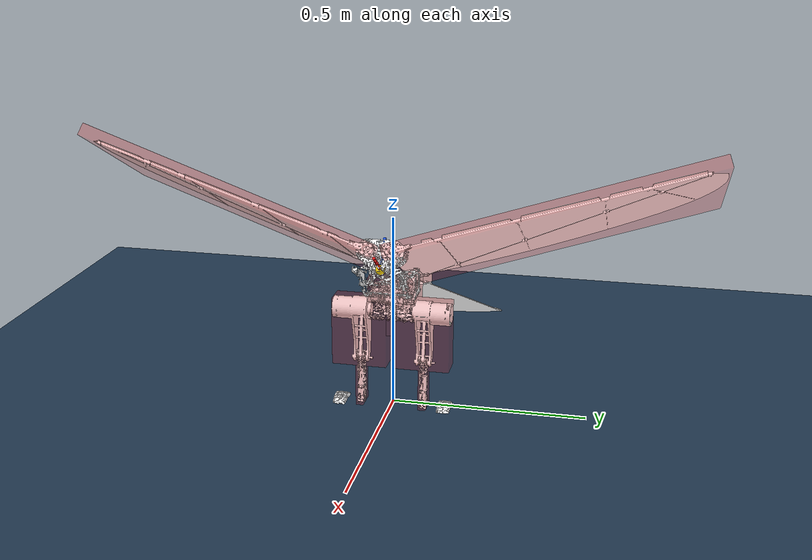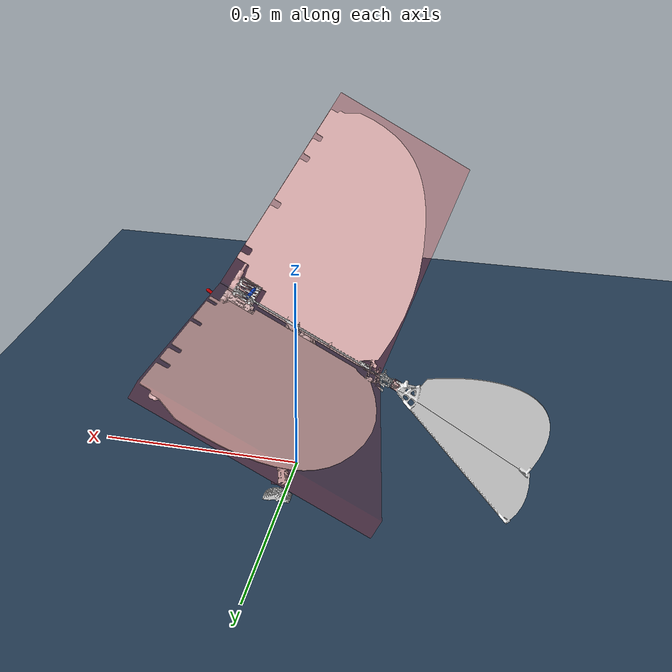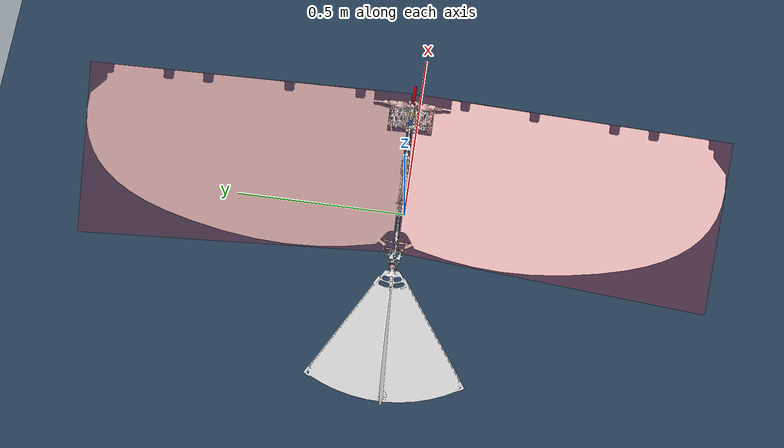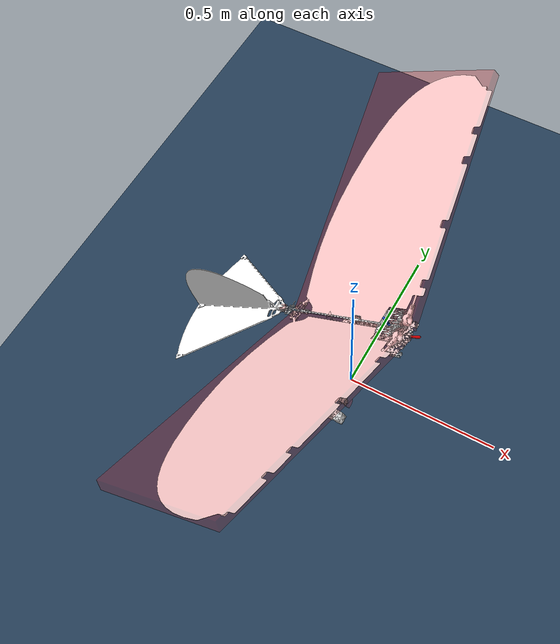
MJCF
<mujoco model="walking eagle we6 flat scene">
  <include file="we6.xml" />
  <statistic center="0 0 0.15" extent="0.8" />
  <visual>
    <headlight diffuse="0.6 0.6 0.6" ambient="0.3 0.3 0.3" specular="0 0 0" />
    <rgba haze="0.15 0.25 0.35 1" />
    <global azimuth="-130" elevation="-20" />
  </visual>
  <asset>
    <texture type="skybox" builtin="gradient" rgb1="0.3 0.5 0.7" rgb2="0 0 0" width="512" height="3072" />
    <texture type="2d" name="groundplane" builtin="checker" mark="edge" rgb1="0.2 0.3 0.4" rgb2="0.1 0.2 0.3" markrgb="0.8 0.8 0.8" width="300" height="300" />
    <material name="groundplane" texture="groundplane" texuniform="true" texrepeat="5 5" reflectance="0.2" />
  </asset>
  <worldbody>
    <light pos="0 0 1.5" dir="0 0 -1" directional="true" />
    <geom name="floor" size="0 0 0.05" type="plane" material="groundplane" friction="1.0 0.005 0.0001" />
  </worldbody>
</mujoco>

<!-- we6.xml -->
<mujoco model="walking_eagle_we6">
  <compiler angle="radian" meshdir="../walking_eagle_v5_review" autolimits="true" />
  <option timestep="0.001" gravity="0 0 -9.81" integrator="Euler" />
  <!-- WE6 Bode-PACE nominal joint dynamics; command FIFO delays live in we6_pace_params.json. -->
  <asset>
    <mesh name="base_link" file="meshes_lod/base_link.STL" />
    <mesh name="left_thigh_link" file="meshes_lod/left_thigh_link.STL" />
    <mesh name="left_calf_link" file="meshes_lod/left_calf_link.STL" />
    <mesh name="left_foot_link" file="meshes_lod/left_foot_link.STL" />
    <mesh name="right_thigh_link" file="meshes_lod/right_thigh_link.STL" />
    <mesh name="right_calf_link" file="meshes_lod/right_calf_link.STL" />
    <mesh name="right_foot_link" file="meshes_lod/right_foot_link.STL" />
    <mesh name="left_wind_link" file="meshes_lod/left_wind_link.STL" />
    <mesh name="right_wind_link" file="meshes_lod/right_wind_link.STL" />
    <mesh name="U1_link" file="meshes_lod/U1_link.STL" />
    <mesh name="U2_link" file="meshes_lod/U2_link.STL" />
    <material name="base_link_mat" rgba="1 1 1 1" specular="0" />
    <material name="left_thigh_link_mat" rgba="1 1 1 1" specular="0" />
    <material name="left_calf_link_mat" rgba="1 1 1 1" specular="0" />
    <material name="left_foot_link_mat" rgba="1 1 1 1" specular="0" />
    <material name="right_thigh_link_mat" rgba="1 1 1 1" specular="0" />
    <material name="right_calf_link_mat" rgba="1 1 1 1" specular="0" />
    <material name="right_foot_link_mat" rgba="1 1 1 1" specular="0" />
    <material name="left_wind_link_mat" rgba="1 1 1 1" specular="0" />
    <material name="right_wind_link_mat" rgba="1 1 1 1" specular="0" />
    <material name="U1_link_mat" rgba="1 1 1 1" specular="0" />
    <material name="U2_link_mat" rgba="1 1 1 1" specular="0" />
  </asset>
  <worldbody>
    <body name="base_link" pos="0 0 0.30">
      <inertial pos="0.057396 0.00019783692593621118 0.073815" mass="1.4743" fullinertia="0.011371 0.021563 0.013052 0 -0.0095203 0" />
      <freejoint />
      <site name="imu" pos="0 0 0" />
      <site name="ancestor_dante_front_center_touch_site" type="box" pos="-0.238300041 -0.000144970152 -0.0366289269" quat="0.970289497 -0.00355089999 -0.241919199 -0.000885299997" size="0.0083688576 0.00867721354 0.00894246728" rgba="1 0 0 0.15" />
      <site name="base_link_touch_site" rgba="1 0 0 0.15" type="box" pos="-0.019765 0 -0.0245" size="0.063985 0.05915 0.075" />
      <geom pos="0 0 0" group="1" contype="0" conaffinity="0" material="base_link_mat" type="mesh" mesh="base_link" name="base_link_visual" />
      <geom pos="-0.019765 0 -0.0245" rgba="0.9373 0.2667 0.2667 1" group="3" contype="1" conaffinity="1" name="base_link_collision" type="box" size="0.063985 0.05915 0.075" />
      <site name="push_site" pos="0.14543 0 0.1118" quat="0.946255 0 -0.323422 0" />
      <geom name="push_link_marker" pos="0.14543 0 0.1118" quat="0.946255 0 -0.323422 0" type="sphere" size="0.012" rgba="1 0.85 0.05 0.9" group="1" contype="0" conaffinity="0" density="0" />
      <geom name="push_link_x_axis" type="capsule" fromto="0.14543 0 0.1118 0.208694 0 0.160766" size="0.004" rgba="1 0 0 0.85" group="1" contype="0" conaffinity="0" density="0" />
      <geom name="push_link_z_axis" type="capsule" fromto="0.14543 0 0.1118 0.096464 0 0.175064" size="0.004" rgba="0.1 0.35 1 0.85" group="1" contype="0" conaffinity="0" density="0" />
      <body name="left_thigh_joint" pos="0.01425 0.05405 -0.0415" quat="0.5 -0.5 0.5 0.5">
        <joint name="left_thigh_joint" type="hinge" axis="0 0 1" limited="true" range="-0.43 1.57" damping="0" frictionloss="0" armature="0.0030211368456830893" />
        <inertial pos="0.011137 0.0003378 0.034185" mass="0.64989" fullinertia="0.0010557 0.0017994 0.00082903 -0.00001201 0.00004013 0.00000637" />
        <site name="left_thigh_touch_site" rgba="1 0 0 0.15" type="box" pos="0.0574951 0.0000127 0.0274" size="0.0889951 0.031454 0.0714" />
        <geom pos="0 0 0" group="1" contype="0" conaffinity="0" material="left_thigh_link_mat" type="mesh" mesh="left_thigh_link" name="left_thigh_link_visual" />
        <geom pos="0.0574951 0.0000127 0.0274" rgba="0.9373 0.2667 0.2667 1" group="3" contype="1" conaffinity="1" name="left_thigh_collision" type="box" size="0.0889951 0.031454 0.0714" />
        <body name="left_calf_joint" pos="0.136 0 0.0283">
          <joint name="left_calf_joint" type="hinge" axis="0 0 1" limited="true" range="-2.669 -0.17" damping="0.028598203906208486" frictionloss="0.09300014369144381" armature="0.020428934066981888" />
          <inertial pos="0.1315472 -0.0000738 0.0138745" mass="0.24876" fullinertia="0.00003295 0.00049089 0.00047681 -0.00000334 -0.0000646 -0.00000027" />
          <site name="left_calf_touch_site" rgba="1 0 0 0.15" type="box" pos="0.078362 0 0" size="0.098638 0.027 0.01" />
          <geom pos="0 0 0" group="1" contype="0" conaffinity="0" material="left_calf_link_mat" type="mesh" mesh="left_calf_link" name="left_calf_link_visual" />
          <geom pos="0.078362 0 0" rgba="0.9373 0.2667 0.2667 1" group="3" contype="1" conaffinity="1" name="left_calf_collision" type="box" size="0.098638 0.027 0.01" />
          <body name="left_foot_joint" pos="0.15 0 0.038">
            <joint name="left_foot_joint" type="hinge" axis="0 0 1" damping="0.06467854502373717" frictionloss="0" armature="0.00034739571346796935" />
            <inertial pos="0.0000064 -0.0000029 0.016578" mass="0.12784" fullinertia="0.00007506 0.00007507 0.00012118 0.00000001 -0.00000001 0" />
            <geom pos="0 0 0" group="1" contype="0" conaffinity="0" material="left_foot_link_mat" type="mesh" mesh="left_foot_link" name="left_foot_link_visual" />
            <geom pos="0 0 0.0167852" rgba="0.9373 0.2667 0.2667 1" group="3" contype="1" conaffinity="1" name="left_foot_collision" type="cylinder" size="0.0425 0.017285" />
          </body>
        </body>
      </body>
      <body name="right_thigh_joint" pos="0.01425 -0.05405 -0.0415" quat="0.5 0.5 0.5 -0.5">
        <joint name="right_thigh_joint" type="hinge" axis="0 0 -1" limited="true" range="-0.43 1.57" damping="0" frictionloss="0" armature="0.0030211368456830893" />
        <inertial pos="0.011137 -0.0003378 0.034185" mass="0.64989" fullinertia="0.0010557 0.0017994 0.00082903 0.00001201 0.00004013 -0.00000637" />
        <site name="right_thigh_touch_site" rgba="1 0 0 0.15" type="box" pos="0.0574951 -0.0000127 0.0274" size="0.0889951 0.031454 0.0714" />
        <geom pos="0 0 0" group="1" contype="0" conaffinity="0" material="right_thigh_link_mat" type="mesh" mesh="right_thigh_link" name="right_thigh_link_visual" />
        <geom pos="0.0574951 -0.0000127 0.0274" rgba="0.9373 0.2667 0.2667 1" group="3" contype="1" conaffinity="1" name="right_thigh_collision" type="box" size="0.0889951 0.031454 0.0714" />
        <body name="right_calf_joint" pos="0.136 0 0.0283">
          <joint name="right_calf_joint" type="hinge" axis="0 0 -1" limited="true" range="-2.669 -0.17" damping="0.028598203906208486" frictionloss="0.09300014369144381" armature="0.020428934066981888" />
          <inertial pos="0.1315472 0.0000738 0.0138745" mass="0.24876" fullinertia="0.00003295 0.00049089 0.00047681 0.00000334 -0.0000646 0.00000027" />
          <site name="right_calf_touch_site" rgba="1 0 0 0.15" type="box" pos="0.078362 0 0" size="0.098638 0.027 0.01" />
          <geom pos="0 0 0" group="1" contype="0" conaffinity="0" material="right_calf_link_mat" type="mesh" mesh="right_calf_link" name="right_calf_link_visual" />
          <geom pos="0.078362 0 0" rgba="0.9373 0.2667 0.2667 1" group="3" contype="1" conaffinity="1" name="right_calf_collision" type="box" size="0.098638 0.027 0.01" />
          <body name="right_foot_joint" pos="0.15 0 0.038">
            <joint name="right_foot_joint" type="hinge" axis="0 0 -1" damping="0.06467854502373717" frictionloss="0" armature="0.00034739571346796935" />
            <inertial pos="0.0000064 0.0000029 0.016578" mass="0.12784" fullinertia="0.00007506 0.00007507 0.00012118 -0.00000001 -0.00000001 0" />
            <geom pos="0 0 0" group="1" contype="0" conaffinity="0" material="right_foot_link_mat" type="mesh" mesh="right_foot_link" name="right_foot_link_visual" />
            <geom pos="0 0 0.0167852" rgba="0.9373 0.2667 0.2667 1" group="3" contype="1" conaffinity="1" name="right_foot_collision" type="cylinder" size="0.0425 0.017285" />
          </body>
        </body>
      </body>
      <body name="left_wind_link" pos="0.14789 0.031175 0.16022" quat="0.7071068 0 0.7071068 0">
        <inertial pos="-0.042941 0.29434 -0.11935" mass="0.06639" fullinertia="0.0044865 0.001392 0.0041446 0.0010482 0.00028641 0.0004663" />
        <site name="ancestor_dante_upper_left_touch_site" rgba="1 0 0 0.15" type="box" pos="-0.0262424 0.3725189 -0.2144802" quat="0.6499461 -0.7046226 -0.2785142 -0.0592183" size="0.0164999 0.2146047 0.4153018" />
        <geom pos="0 0 0" group="1" contype="0" conaffinity="0" material="left_wind_link_mat" type="mesh" mesh="left_wind_link" name="left_wind_link_visual" />
        <geom pos="-0.0262424 0.3725189 -0.2144802" quat="0.6499461 -0.7046226 -0.2785142 -0.0592183" rgba="0.9373 0.2667 0.2667 1" group="3" contype="1" conaffinity="1" name="left_wind_link_obb_collision" type="box" size="0.0164999 0.2146047 0.4153018" />
      </body>
      <body name="right_wind_link" pos="0.14789 -0.031175 0.16022" quat="0.7071068 0 0.7071068 0">
        <inertial pos="-0.042941 -0.29434 -0.11935" mass="0.06639" fullinertia="0.0044865 0.001392 0.0041446 -0.0010482 0.00028641 -0.0004663" />
        <site name="ancestor_dante_upper_right_touch_site" rgba="1 0 0 0.15" type="box" pos="-0.0262424 -0.3725189 -0.2144802" quat="0.6499461 0.7046226 -0.2785142 0.0592183" size="0.0164999 0.2146047 0.4153018" />
        <geom pos="0 0 0" group="1" contype="0" conaffinity="0" material="right_wind_link_mat" type="mesh" mesh="right_wind_link" name="right_wind_link_visual" />
        <geom pos="-0.0262424 -0.3725189 -0.2144802" quat="0.6499461 0.7046226 -0.2785142 0.0592183" rgba="0.9373 0.2667 0.2667 1" group="3" contype="1" conaffinity="1" name="right_wind_link_obb_collision" type="box" size="0.0164999 0.2146047 0.4153018" />
      </body>
      <body name="U1_link" pos="-0.2383 0.006505 -0.036629" quat="0.678303 -0.6783055 -0.1997578 -0.1997585">
        <inertial pos="0 0 -0.00665" mass="0.0016221" diaginertia="0.00000004 0.00000004 0.00000004" />
        <geom pos="0 0 0" group="1" contype="0" conaffinity="0" material="U1_link_mat" type="mesh" mesh="U1_link" name="U1_link_visual" />
        <body name="U2_link" pos="0 -0.00673 -0.00665" quat="0.7069797 0.7069823 -0.0133345 0.0133346">
          <inertial pos="-0.1631022 0 0.0055194" mass="0.0462933" fullinertia="0.00032764 0.0007796 0.00098905 0 0.00003037 0" />
          <geom pos="0 0 0" group="1" contype="0" conaffinity="0" material="U2_link_mat" type="mesh" mesh="U2_link" name="U2_link_visual" />
        </body>
      </body>
    </body>
  </worldbody>
  <actuator>
    <motor name="left_thigh_motor" joint="left_thigh_joint" ctrlrange="-5.5 5.5" />
    <motor name="left_calf_motor" joint="left_calf_joint" ctrlrange="-14 14" />
    <motor name="left_foot_motor" joint="left_foot_joint" ctrlrange="-5.5 5.5" />
    <motor name="right_thigh_motor" joint="right_thigh_joint" ctrlrange="-5.5 5.5" />
    <motor name="right_calf_motor" joint="right_calf_joint" ctrlrange="-14 14" />
    <motor name="right_foot_motor" joint="right_foot_joint" ctrlrange="-5.5 5.5" />
  </actuator>
  <sensor>
    <jointpos name="left_thigh_pos" joint="left_thigh_joint" />
    <jointpos name="left_calf_pos" joint="left_calf_joint" />
    <jointpos name="left_foot_pos" joint="left_foot_joint" />
    <jointpos name="right_thigh_pos" joint="right_thigh_joint" />
    <jointpos name="right_calf_pos" joint="right_calf_joint" />
    <jointpos name="right_foot_pos" joint="right_foot_joint" />
    <jointvel name="left_thigh_vel" joint="left_thigh_joint" />
    <jointvel name="left_calf_vel" joint="left_calf_joint" />
    <jointvel name="left_foot_vel" joint="left_foot_joint" />
    <jointvel name="right_thigh_vel" joint="right_thigh_joint" />
    <jointvel name="right_calf_vel" joint="right_calf_joint" />
    <jointvel name="right_foot_vel" joint="right_foot_joint" />
    <jointactuatorfrc name="left_thigh_torque" joint="left_thigh_joint" />
    <jointactuatorfrc name="left_calf_torque" joint="left_calf_joint" />
    <jointactuatorfrc name="left_foot_torque" joint="left_foot_joint" />
    <jointactuatorfrc name="right_thigh_torque" joint="right_thigh_joint" />
    <jointactuatorfrc name="right_calf_torque" joint="right_calf_joint" />
    <jointactuatorfrc name="right_foot_torque" joint="right_foot_joint" />
    <framequat name="imu_quat" objtype="site" objname="imu" noise="0.0" />
    <gyro name="imu_gyro" site="imu" noise="0.0" />
    <accelerometer name="imu_acc" site="imu" />
    <gyro name="gyro" site="imu" />
    <velocimeter name="local_linvel" site="imu" />
    <framexaxis name="xvector" objtype="site" objname="imu" />
    <frameyaxis name="yvector" objtype="site" objname="imu" />
    <framezaxis name="upvector" objtype="site" objname="imu" />
    <touch name="base_link_touch" site="base_link_touch_site" />
    <touch name="left_thigh_touch" site="left_thigh_touch_site" />
    <touch name="left_calf_touch" site="left_calf_touch_site" />
    <touch name="right_thigh_touch" site="right_thigh_touch_site" />
    <touch name="right_calf_touch" site="right_calf_touch_site" />
    <touch name="ancestor_dante_upper_left_touch" site="ancestor_dante_upper_left_touch_site" />
    <touch name="ancestor_dante_upper_right_touch" site="ancestor_dante_upper_right_touch_site" />
    <touch name="ancestor_dante_front_center_touch" site="ancestor_dante_front_center_touch_site" />
  </sensor>
  <contact>
    <exclude body1="base_link" body2="left_thigh_joint" />
    <exclude body1="base_link" body2="left_calf_joint" />
    <exclude body1="base_link" body2="left_foot_joint" />
    <exclude body1="base_link" body2="right_thigh_joint" />
    <exclude body1="base_link" body2="right_calf_joint" />
    <exclude body1="base_link" body2="right_foot_joint" />
    <exclude body1="base_link" body2="left_wind_link" />
    <exclude body1="base_link" body2="right_wind_link" />
    <exclude body1="base_link" body2="U1_link" />
    <exclude body1="base_link" body2="U2_link" />
    <exclude body1="left_thigh_joint" body2="left_calf_joint" />
    <exclude body1="left_thigh_joint" body2="left_foot_joint" />
    <exclude body1="left_thigh_joint" body2="right_thigh_joint" />
    <exclude body1="left_thigh_joint" body2="right_calf_joint" />
    <exclude body1="left_thigh_joint" body2="right_foot_joint" />
    <exclude body1="left_thigh_joint" body2="left_wind_link" />
    <exclude body1="left_thigh_joint" body2="right_wind_link" />
    <exclude body1="left_thigh_joint" body2="U1_link" />
    <exclude body1="left_thigh_joint" body2="U2_link" />
    <exclude body1="left_calf_joint" body2="left_foot_joint" />
    <exclude body1="left_calf_joint" body2="right_thigh_joint" />
    <exclude body1="left_calf_joint" body2="right_calf_joint" />
    <exclude body1="left_calf_joint" body2="right_foot_joint" />
    <exclude body1="left_calf_joint" body2="left_wind_link" />
    <exclude body1="left_calf_joint" body2="right_wind_link" />
    <exclude body1="left_calf_joint" body2="U1_link" />
    <exclude body1="left_calf_joint" body2="U2_link" />
    <exclude body1="left_foot_joint" body2="right_thigh_joint" />
    <exclude body1="left_foot_joint" body2="right_calf_joint" />
    <exclude body1="left_foot_joint" body2="right_foot_joint" />
    <exclude body1="left_foot_joint" body2="left_wind_link" />
    <exclude body1="left_foot_joint" body2="right_wind_link" />
    <exclude body1="left_foot_joint" body2="U1_link" />
    <exclude body1="left_foot_joint" body2="U2_link" />
    <exclude body1="right_thigh_joint" body2="right_calf_joint" />
    <exclude body1="right_thigh_joint" body2="right_foot_joint" />
    <exclude body1="right_thigh_joint" body2="left_wind_link" />
    <exclude body1="right_thigh_joint" body2="right_wind_link" />
    <exclude body1="right_thigh_joint" body2="U1_link" />
    <exclude body1="right_thigh_joint" body2="U2_link" />
    <exclude body1="right_calf_joint" body2="right_foot_joint" />
    <exclude body1="right_calf_joint" body2="left_wind_link" />
    <exclude body1="right_calf_joint" body2="right_wind_link" />
    <exclude body1="right_calf_joint" body2="U1_link" />
    <exclude body1="right_calf_joint" body2="U2_link" />
    <exclude body1="right_foot_joint" body2="left_wind_link" />
    <exclude body1="right_foot_joint" body2="right_wind_link" />
    <exclude body1="right_foot_joint" body2="U1_link" />
    <exclude body1="right_foot_joint" body2="U2_link" />
    <exclude body1="left_wind_link" body2="right_wind_link" />
    <exclude body1="left_wind_link" body2="U1_link" />
    <exclude body1="left_wind_link" body2="U2_link" />
    <exclude body1="right_wind_link" body2="U1_link" />
    <exclude body1="right_wind_link" body2="U2_link" />
    <exclude body1="U1_link" body2="U2_link" />
  </contact>
  <keyframe>
    <key name="home" qpos="0 0 0.30 1 0 0 0 0.8 -1.6 0 0.8 -1.6 0" ctrl="0 0 0 0 0 0" />
  </keyframe>
</mujoco>
